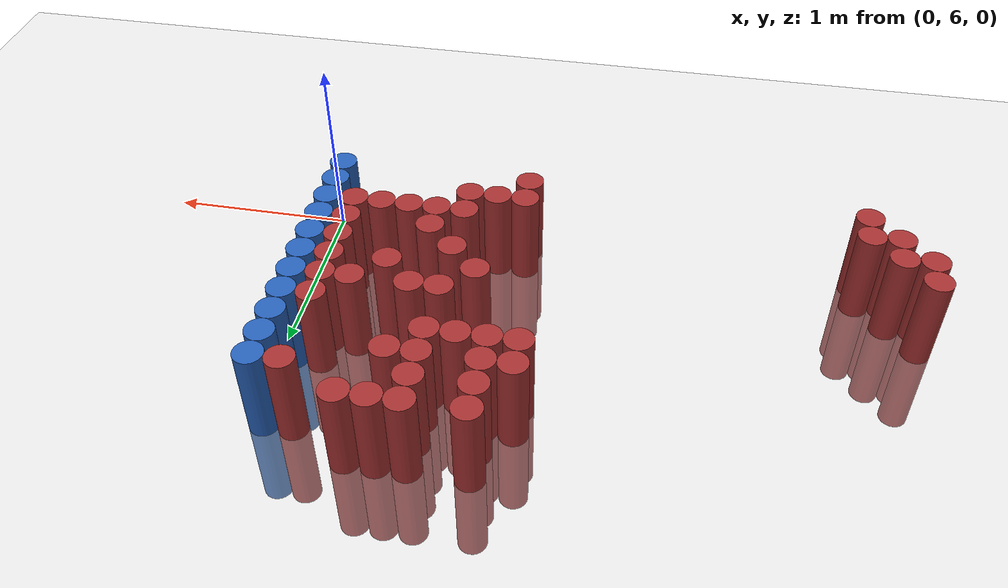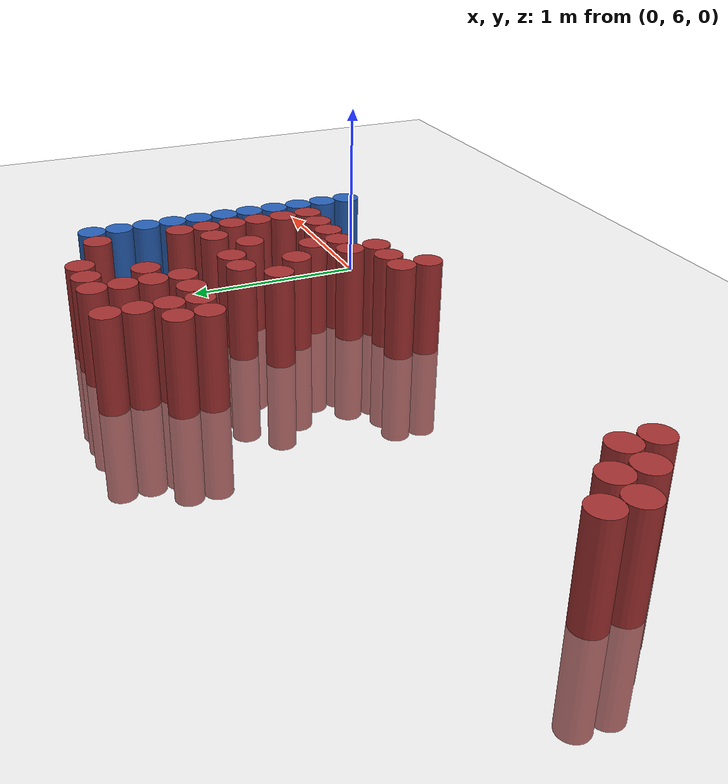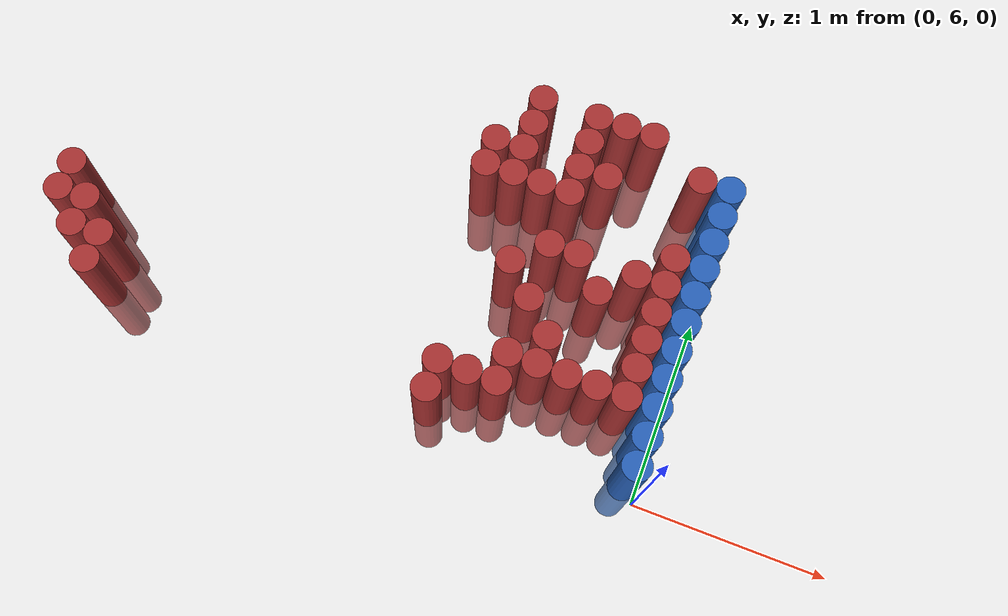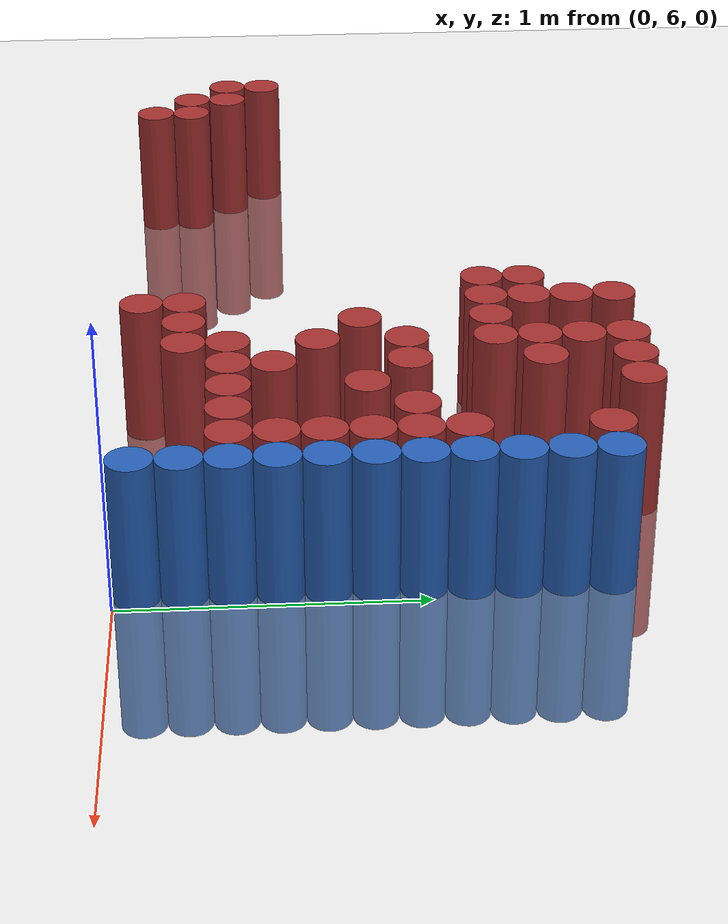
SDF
<sdf version="1.6">
 <world name="default">
  <model name="ground_plane">
   <static>1</static>
   <link name="link">
    <collision name="collision">
     <geometry><plane><normal>0 0 1</normal><size>100 100</size></plane></geometry>
     <surface><friction><ode><mu>100</mu><mu2>50</mu2></ode></friction></surface>
    </collision>
    <visual name="visual">
     <cast_shadows>0</cast_shadows>
     <geometry><plane><normal>0 0 1</normal><size>100 100</size></plane></geometry>
     <material>
      <script><uri>file://media/materials/scripts/gazebo.material</uri><name>Gazebo/Grey</name></script>
     </material>
    </visual>
   </link>
  </model>
  <model name="unit_cylinder_184">
   <static>1</static>
   <pose>-3.225000 6.375000 0.000000 0.000000 0.000000 0.000000</pose>
   <link name="link">
    <inertial>
     <mass>1</mass>
     <inertia><ixx>0.145833</ixx><ixy>0</ixy><ixz>0</ixz><iyy>0.145833</iyy><iyz>0</iyz><izz>0.125</izz></inertia>
    </inertial>
    <collision name="collision">
     <geometry><cylinder><radius>0.075000</radius><length>1</length></cylinder></geometry>
    </collision>
    <visual name="visual">
     <geometry><cylinder><radius>0.075000</radius><length>1</length></cylinder></geometry>
     <material>
      <ambient>0.648000 0.192000 0.192000 1</ambient>
      <diffuse>0.648000 0.192000 0.192000 1</diffuse>
     </material>
     <material>
      <script><name>Gazebo/Grey</name><uri>file://media/materials/scripts/gazebo.material</uri></script>
     </material>
    </visual>
   </link>
  </model>
  <model name="unit_cylinder_185">
   <static>1</static>
   <pose>-3.225000 6.525000 0.000000 0.000000 0.000000 0.000000</pose>
   <link name="link">
    <inertial>
     <mass>1</mass>
     <inertia><ixx>0.145833</ixx><ixy>0</ixy><ixz>0</ixz><iyy>0.145833</iyy><iyz>0</iyz><izz>0.125</izz></inertia>
    </inertial>
    <collision name="collision">
     <geometry><cylinder><radius>0.075000</radius><length>1</length></cylinder></geometry>
    </collision>
    <visual name="visual">
     <geometry><cylinder><radius>0.075000</radius><length>1</length></cylinder></geometry>
     <material>
      <ambient>0.648000 0.192000 0.192000 1</ambient>
      <diffuse>0.648000 0.192000 0.192000 1</diffuse>
     </material>
     <material>
      <script><name>Gazebo/Grey</name><uri>file://media/materials/scripts/gazebo.material</uri></script>
     </material>
    </visual>
   </link>
  </model>
  <model name="unit_cylinder_190">
   <static>1</static>
   <pose>-3.075000 6.225000 0.000000 0.000000 0.000000 0.000000</pose>
   <link name="link">
    <inertial>
     <mass>1</mass>
     <inertia><ixx>0.145833</ixx><ixy>0</ixy><ixz>0</ixz><iyy>0.145833</iyy><iyz>0</iyz><izz>0.125</izz></inertia>
    </inertial>
    <collision name="collision">
     <geometry><cylinder><radius>0.075000</radius><length>1</length></cylinder></geometry>
    </collision>
    <visual name="visual">
     <geometry><cylinder><radius>0.075000</radius><length>1</length></cylinder></geometry>
     <material>
      <ambient>0.648000 0.192000 0.192000 1</ambient>
      <diffuse>0.648000 0.192000 0.192000 1</diffuse>
     </material>
     <material>
      <script><name>Gazebo/Grey</name><uri>file://media/materials/scripts/gazebo.material</uri></script>
     </material>
    </visual>
   </link>
  </model>
  <model name="unit_cylinder_191">
   <static>1</static>
   <pose>-3.075000 6.375000 0.000000 0.000000 0.000000 0.000000</pose>
   <link name="link">
    <inertial>
     <mass>1</mass>
     <inertia><ixx>0.145833</ixx><ixy>0</ixy><ixz>0</ixz><iyy>0.145833</iyy><iyz>0</iyz><izz>0.125</izz></inertia>
    </inertial>
    <collision name="collision">
     <geometry><cylinder><radius>0.075000</radius><length>1</length></cylinder></geometry>
    </collision>
    <visual name="visual">
     <geometry><cylinder><radius>0.075000</radius><length>1</length></cylinder></geometry>
     <material>
      <ambient>0.648000 0.192000 0.192000 1</ambient>
      <diffuse>0.648000 0.192000 0.192000 1</diffuse>
     </material>
     <material>
      <script><name>Gazebo/Grey</name><uri>file://media/materials/scripts/gazebo.material</uri></script>
     </material>
    </visual>
   </link>
  </model>
  <model name="unit_cylinder_192">
   <static>1</static>
   <pose>-2.925000 6.075000 0.000000 0.000000 0.000000 0.000000</pose>
   <link name="link">
    <inertial>
     <mass>1</mass>
     <inertia><ixx>0.145833</ixx><ixy>0</ixy><ixz>0</ixz><iyy>0.145833</iyy><iyz>0</iyz><izz>0.125</izz></inertia>
    </inertial>
    <collision name="collision">
     <geometry><cylinder><radius>0.075000</radius><length>1</length></cylinder></geometry>
    </collision>
    <visual name="visual">
     <geometry><cylinder><radius>0.075000</radius><length>1</length></cylinder></geometry>
     <material>
      <ambient>0.648000 0.192000 0.192000 1</ambient>
      <diffuse>0.648000 0.192000 0.192000 1</diffuse>
     </material>
     <material>
      <script><name>Gazebo/Grey</name><uri>file://media/materials/scripts/gazebo.material</uri></script>
     </material>
    </visual>
   </link>
  </model>
  <model name="unit_cylinder_193">
   <static>1</static>
   <pose>-2.925000 6.225000 0.000000 0.000000 0.000000 0.000000</pose>
   <link name="link">
    <inertial>
     <mass>1</mass>
     <inertia><ixx>0.145833</ixx><ixy>0</ixy><ixz>0</ixz><iyy>0.145833</iyy><iyz>0</iyz><izz>0.125</izz></inertia>
    </inertial>
    <collision name="collision">
     <geometry><cylinder><radius>0.075000</radius><length>1</length></cylinder></geometry>
    </collision>
    <visual name="visual">
     <geometry><cylinder><radius>0.075000</radius><length>1</length></cylinder></geometry>
     <material>
      <ambient>0.648000 0.192000 0.192000 1</ambient>
      <diffuse>0.648000 0.192000 0.192000 1</diffuse>
     </material>
     <material>
      <script><name>Gazebo/Grey</name><uri>file://media/materials/scripts/gazebo.material</uri></script>
     </material>
    </visual>
   </link>
  </model>
  <model name="unit_cylinder_200">
   <static>1</static>
   <pose>-1.275000 7.275000 0.000000 0.000000 0.000000 0.000000</pose>
   <link name="link">
    <inertial>
     <mass>1</mass>
     <inertia><ixx>0.145833</ixx><ixy>0</ixy><ixz>0</ixz><iyy>0.145833</iyy><iyz>0</iyz><izz>0.125</izz></inertia>
    </inertial>
    <collision name="collision">
     <geometry><cylinder><radius>0.075000</radius><length>1</length></cylinder></geometry>
    </collision>
    <visual name="visual">
     <geometry><cylinder><radius>0.075000</radius><length>1</length></cylinder></geometry>
     <material>
      <ambient>0.648000 0.192000 0.192000 1</ambient>
      <diffuse>0.648000 0.192000 0.192000 1</diffuse>
     </material>
     <material>
      <script><name>Gazebo/Grey</name><uri>file://media/materials/scripts/gazebo.material</uri></script>
     </material>
    </visual>
   </link>
  </model>
  <model name="unit_cylinder_201">
   <static>1</static>
   <pose>-1.275000 7.425000 0.000000 0.000000 0.000000 0.000000</pose>
   <link name="link">
    <inertial>
     <mass>1</mass>
     <inertia><ixx>0.145833</ixx><ixy>0</ixy><ixz>0</ixz><iyy>0.145833</iyy><iyz>0</iyz><izz>0.125</izz></inertia>
    </inertial>
    <collision name="collision">
     <geometry><cylinder><radius>0.075000</radius><length>1</length></cylinder></geometry>
    </collision>
    <visual name="visual">
     <geometry><cylinder><radius>0.075000</radius><length>1</length></cylinder></geometry>
     <material>
      <ambient>0.648000 0.192000 0.192000 1</ambient>
      <diffuse>0.648000 0.192000 0.192000 1</diffuse>
     </material>
     <material>
      <script><name>Gazebo/Grey</name><uri>file://media/materials/scripts/gazebo.material</uri></script>
     </material>
    </visual>
   </link>
  </model>
  <model name="unit_cylinder_206">
   <static>1</static>
   <pose>-1.125000 6.075000 0.000000 0.000000 0.000000 0.000000</pose>
   <link name="link">
    <inertial>
     <mass>1</mass>
     <inertia><ixx>0.145833</ixx><ixy>0</ixy><ixz>0</ixz><iyy>0.145833</iyy><iyz>0</iyz><izz>0.125</izz></inertia>
    </inertial>
    <collision name="collision">
     <geometry><cylinder><radius>0.075000</radius><length>1</length></cylinder></geometry>
    </collision>
    <visual name="visual">
     <geometry><cylinder><radius>0.075000</radius><length>1</length></cylinder></geometry>
     <material>
      <ambient>0.648000 0.192000 0.192000 1</ambient>
      <diffuse>0.648000 0.192000 0.192000 1</diffuse>
     </material>
     <material>
      <script><name>Gazebo/Grey</name><uri>file://media/materials/scripts/gazebo.material</uri></script>
     </material>
    </visual>
   </link>
  </model>
  <model name="unit_cylinder_207">
   <static>1</static>
   <pose>-1.125000 6.225000 0.000000 0.000000 0.000000 0.000000</pose>
   <link name="link">
    <inertial>
     <mass>1</mass>
     <inertia><ixx>0.145833</ixx><ixy>0</ixy><ixz>0</ixz><iyy>0.145833</iyy><iyz>0</iyz><izz>0.125</izz></inertia>
    </inertial>
    <collision name="collision">
     <geometry><cylinder><radius>0.075000</radius><length>1</length></cylinder></geometry>
    </collision>
    <visual name="visual">
     <geometry><cylinder><radius>0.075000</radius><length>1</length></cylinder></geometry>
     <material>
      <ambient>0.648000 0.192000 0.192000 1</ambient>
      <diffuse>0.648000 0.192000 0.192000 1</diffuse>
     </material>
     <material>
      <script><name>Gazebo/Grey</name><uri>file://media/materials/scripts/gazebo.material</uri></script>
     </material>
    </visual>
   </link>
  </model>
  <model name="unit_cylinder_208">
   <static>1</static>
   <pose>-1.125000 7.275000 0.000000 0.000000 0.000000 0.000000</pose>
   <link name="link">
    <inertial>
     <mass>1</mass>
     <inertia><ixx>0.145833</ixx><ixy>0</ixy><ixz>0</ixz><iyy>0.145833</iyy><iyz>0</iyz><izz>0.125</izz></inertia>
    </inertial>
    <collision name="collision">
     <geometry><cylinder><radius>0.075000</radius><length>1</length></cylinder></geometry>
    </collision>
    <visual name="visual">
     <geometry><cylinder><radius>0.075000</radius><length>1</length></cylinder></geometry>
     <material>
      <ambient>0.648000 0.192000 0.192000 1</ambient>
      <diffuse>0.648000 0.192000 0.192000 1</diffuse>
     </material>
     <material>
      <script><name>Gazebo/Grey</name><uri>file://media/materials/scripts/gazebo.material</uri></script>
     </material>
    </visual>
   </link>
  </model>
  <model name="unit_cylinder_209">
   <static>1</static>
   <pose>-1.125000 7.425000 0.000000 0.000000 0.000000 0.000000</pose>
   <link name="link">
    <inertial>
     <mass>1</mass>
     <inertia><ixx>0.145833</ixx><ixy>0</ixy><ixz>0</ixz><iyy>0.145833</iyy><iyz>0</iyz><izz>0.125</izz></inertia>
    </inertial>
    <collision name="collision">
     <geometry><cylinder><radius>0.075000</radius><length>1</length></cylinder></geometry>
    </collision>
    <visual name="visual">
     <geometry><cylinder><radius>0.075000</radius><length>1</length></cylinder></geometry>
     <material>
      <ambient>0.648000 0.192000 0.192000 1</ambient>
      <diffuse>0.648000 0.192000 0.192000 1</diffuse>
     </material>
     <material>
      <script><name>Gazebo/Grey</name><uri>file://media/materials/scripts/gazebo.material</uri></script>
     </material>
    </visual>
   </link>
  </model>
  <model name="unit_cylinder_210">
   <static>1</static>
   <pose>-1.125000 7.575000 0.000000 0.000000 0.000000 0.000000</pose>
   <link name="link">
    <inertial>
     <mass>1</mass>
     <inertia><ixx>0.145833</ixx><ixy>0</ixy><ixz>0</ixz><iyy>0.145833</iyy><iyz>0</iyz><izz>0.125</izz></inertia>
    </inertial>
    <collision name="collision">
     <geometry><cylinder><radius>0.075000</radius><length>1</length></cylinder></geometry>
    </collision>
    <visual name="visual">
     <geometry><cylinder><radius>0.075000</radius><length>1</length></cylinder></geometry>
     <material>
      <ambient>0.648000 0.192000 0.192000 1</ambient>
      <diffuse>0.648000 0.192000 0.192000 1</diffuse>
     </material>
     <material>
      <script><name>Gazebo/Grey</name><uri>file://media/materials/scripts/gazebo.material</uri></script>
     </material>
    </visual>
   </link>
  </model>
  <model name="unit_cylinder_211">
   <static>1</static>
   <pose>-1.125000 7.725000 0.000000 0.000000 0.000000 0.000000</pose>
   <link name="link">
    <inertial>
     <mass>1</mass>
     <inertia><ixx>0.145833</ixx><ixy>0</ixy><ixz>0</ixz><iyy>0.145833</iyy><iyz>0</iyz><izz>0.125</izz></inertia>
    </inertial>
    <collision name="collision">
     <geometry><cylinder><radius>0.075000</radius><length>1</length></cylinder></geometry>
    </collision>
    <visual name="visual">
     <geometry><cylinder><radius>0.075000</radius><length>1</length></cylinder></geometry>
     <material>
      <ambient>0.648000 0.192000 0.192000 1</ambient>
      <diffuse>0.648000 0.192000 0.192000 1</diffuse>
     </material>
     <material>
      <script><name>Gazebo/Grey</name><uri>file://media/materials/scripts/gazebo.material</uri></script>
     </material>
    </visual>
   </link>
  </model>
  <model name="unit_cylinder_220">
   <static>1</static>
   <pose>-0.975000 6.225000 0.000000 0.000000 0.000000 0.000000</pose>
   <link name="link">
    <inertial>
     <mass>1</mass>
     <inertia><ixx>0.145833</ixx><ixy>0</ixy><ixz>0</ixz><iyy>0.145833</iyy><iyz>0</iyz><izz>0.125</izz></inertia>
    </inertial>
    <collision name="collision">
     <geometry><cylinder><radius>0.075000</radius><length>1</length></cylinder></geometry>
    </collision>
    <visual name="visual">
     <geometry><cylinder><radius>0.075000</radius><length>1</length></cylinder></geometry>
     <material>
      <ambient>0.648000 0.192000 0.192000 1</ambient>
      <diffuse>0.648000 0.192000 0.192000 1</diffuse>
     </material>
     <material>
      <script><name>Gazebo/Grey</name><uri>file://media/materials/scripts/gazebo.material</uri></script>
     </material>
    </visual>
   </link>
  </model>
  <model name="unit_cylinder_221">
   <static>1</static>
   <pose>-0.975000 6.825000 0.000000 0.000000 0.000000 0.000000</pose>
   <link name="link">
    <inertial>
     <mass>1</mass>
     <inertia><ixx>0.145833</ixx><ixy>0</ixy><ixz>0</ixz><iyy>0.145833</iyy><iyz>0</iyz><izz>0.125</izz></inertia>
    </inertial>
    <collision name="collision">
     <geometry><cylinder><radius>0.075000</radius><length>1</length></cylinder></geometry>
    </collision>
    <visual name="visual">
     <geometry><cylinder><radius>0.075000</radius><length>1</length></cylinder></geometry>
     <material>
      <ambient>0.648000 0.192000 0.192000 1</ambient>
      <diffuse>0.648000 0.192000 0.192000 1</diffuse>
     </material>
     <material>
      <script><name>Gazebo/Grey</name><uri>file://media/materials/scripts/gazebo.material</uri></script>
     </material>
    </visual>
   </link>
  </model>
  <model name="unit_cylinder_222">
   <static>1</static>
   <pose>-0.975000 7.275000 0.000000 0.000000 0.000000 0.000000</pose>
   <link name="link">
    <inertial>
     <mass>1</mass>
     <inertia><ixx>0.145833</ixx><ixy>0</ixy><ixz>0</ixz><iyy>0.145833</iyy><iyz>0</iyz><izz>0.125</izz></inertia>
    </inertial>
    <collision name="collision">
     <geometry><cylinder><radius>0.075000</radius><length>1</length></cylinder></geometry>
    </collision>
    <visual name="visual">
     <geometry><cylinder><radius>0.075000</radius><length>1</length></cylinder></geometry>
     <material>
      <ambient>0.648000 0.192000 0.192000 1</ambient>
      <diffuse>0.648000 0.192000 0.192000 1</diffuse>
     </material>
     <material>
      <script><name>Gazebo/Grey</name><uri>file://media/materials/scripts/gazebo.material</uri></script>
     </material>
    </visual>
   </link>
  </model>
  <model name="unit_cylinder_228">
   <static>1</static>
   <pose>-0.825000 6.225000 0.000000 0.000000 0.000000 0.000000</pose>
   <link name="link">
    <inertial>
     <mass>1</mass>
     <inertia><ixx>0.145833</ixx><ixy>0</ixy><ixz>0</ixz><iyy>0.145833</iyy><iyz>0</iyz><izz>0.125</izz></inertia>
    </inertial>
    <collision name="collision">
     <geometry><cylinder><radius>0.075000</radius><length>1</length></cylinder></geometry>
    </collision>
    <visual name="visual">
     <geometry><cylinder><radius>0.075000</radius><length>1</length></cylinder></geometry>
     <material>
      <ambient>0.648000 0.192000 0.192000 1</ambient>
      <diffuse>0.648000 0.192000 0.192000 1</diffuse>
     </material>
     <material>
      <script><name>Gazebo/Grey</name><uri>file://media/materials/scripts/gazebo.material</uri></script>
     </material>
    </visual>
   </link>
  </model>
  <model name="unit_cylinder_229">
   <static>1</static>
   <pose>-0.825000 6.375000 0.000000 0.000000 0.000000 0.000000</pose>
   <link name="link">
    <inertial>
     <mass>1</mass>
     <inertia><ixx>0.145833</ixx><ixy>0</ixy><ixz>0</ixz><iyy>0.145833</iyy><iyz>0</iyz><izz>0.125</izz></inertia>
    </inertial>
    <collision name="collision">
     <geometry><cylinder><radius>0.075000</radius><length>1</length></cylinder></geometry>
    </collision>
    <visual name="visual">
     <geometry><cylinder><radius>0.075000</radius><length>1</length></cylinder></geometry>
     <material>
      <ambient>0.648000 0.192000 0.192000 1</ambient>
      <diffuse>0.648000 0.192000 0.192000 1</diffuse>
     </material>
     <material>
      <script><name>Gazebo/Grey</name><uri>file://media/materials/scripts/gazebo.material</uri></script>
     </material>
    </visual>
   </link>
  </model>
  <model name="unit_cylinder_230">
   <static>1</static>
   <pose>-0.825000 6.675000 0.000000 0.000000 0.000000 0.000000</pose>
   <link name="link">
    <inertial>
     <mass>1</mass>
     <inertia><ixx>0.145833</ixx><ixy>0</ixy><ixz>0</ixz><iyy>0.145833</iyy><iyz>0</iyz><izz>0.125</izz></inertia>
    </inertial>
    <collision name="collision">
     <geometry><cylinder><radius>0.075000</radius><length>1</length></cylinder></geometry>
    </collision>
    <visual name="visual">
     <geometry><cylinder><radius>0.075000</radius><length>1</length></cylinder></geometry>
     <material>
      <ambient>0.648000 0.192000 0.192000 1</ambient>
      <diffuse>0.648000 0.192000 0.192000 1</diffuse>
     </material>
     <material>
      <script><name>Gazebo/Grey</name><uri>file://media/materials/scripts/gazebo.material</uri></script>
     </material>
    </visual>
   </link>
  </model>
  <model name="unit_cylinder_231">
   <static>1</static>
   <pose>-0.825000 6.975000 0.000000 0.000000 0.000000 0.000000</pose>
   <link name="link">
    <inertial>
     <mass>1</mass>
     <inertia><ixx>0.145833</ixx><ixy>0</ixy><ixz>0</ixz><iyy>0.145833</iyy><iyz>0</iyz><izz>0.125</izz></inertia>
    </inertial>
    <collision name="collision">
     <geometry><cylinder><radius>0.075000</radius><length>1</length></cylinder></geometry>
    </collision>
    <visual name="visual">
     <geometry><cylinder><radius>0.075000</radius><length>1</length></cylinder></geometry>
     <material>
      <ambient>0.648000 0.192000 0.192000 1</ambient>
      <diffuse>0.648000 0.192000 0.192000 1</diffuse>
     </material>
     <material>
      <script><name>Gazebo/Grey</name><uri>file://media/materials/scripts/gazebo.material</uri></script>
     </material>
    </visual>
   </link>
  </model>
  <model name="unit_cylinder_232">
   <static>1</static>
   <pose>-0.825000 7.275000 0.000000 0.000000 0.000000 0.000000</pose>
   <link name="link">
    <inertial>
     <mass>1</mass>
     <inertia><ixx>0.145833</ixx><ixy>0</ixy><ixz>0</ixz><iyy>0.145833</iyy><iyz>0</iyz><izz>0.125</izz></inertia>
    </inertial>
    <collision name="collision">
     <geometry><cylinder><radius>0.075000</radius><length>1</length></cylinder></geometry>
    </collision>
    <visual name="visual">
     <geometry><cylinder><radius>0.075000</radius><length>1</length></cylinder></geometry>
     <material>
      <ambient>0.648000 0.192000 0.192000 1</ambient>
      <diffuse>0.648000 0.192000 0.192000 1</diffuse>
     </material>
     <material>
      <script><name>Gazebo/Grey</name><uri>file://media/materials/scripts/gazebo.material</uri></script>
     </material>
    </visual>
   </link>
  </model>
  <model name="unit_cylinder_233">
   <static>1</static>
   <pose>-0.825000 7.425000 0.000000 0.000000 0.000000 0.000000</pose>
   <link name="link">
    <inertial>
     <mass>1</mass>
     <inertia><ixx>0.145833</ixx><ixy>0</ixy><ixz>0</ixz><iyy>0.145833</iyy><iyz>0</iyz><izz>0.125</izz></inertia>
    </inertial>
    <collision name="collision">
     <geometry><cylinder><radius>0.075000</radius><length>1</length></cylinder></geometry>
    </collision>
    <visual name="visual">
     <geometry><cylinder><radius>0.075000</radius><length>1</length></cylinder></geometry>
     <material>
      <ambient>0.648000 0.192000 0.192000 1</ambient>
      <diffuse>0.648000 0.192000 0.192000 1</diffuse>
     </material>
     <material>
      <script><name>Gazebo/Grey</name><uri>file://media/materials/scripts/gazebo.material</uri></script>
     </material>
    </visual>
   </link>
  </model>
  <model name="unit_cylinder_234">
   <static>1</static>
   <pose>-0.825000 7.575000 0.000000 0.000000 0.000000 0.000000</pose>
   <link name="link">
    <inertial>
     <mass>1</mass>
     <inertia><ixx>0.145833</ixx><ixy>0</ixy><ixz>0</ixz><iyy>0.145833</iyy><iyz>0</iyz><izz>0.125</izz></inertia>
    </inertial>
    <collision name="collision">
     <geometry><cylinder><radius>0.075000</radius><length>1</length></cylinder></geometry>
    </collision>
    <visual name="visual">
     <geometry><cylinder><radius>0.075000</radius><length>1</length></cylinder></geometry>
     <material>
      <ambient>0.648000 0.192000 0.192000 1</ambient>
      <diffuse>0.648000 0.192000 0.192000 1</diffuse>
     </material>
     <material>
      <script><name>Gazebo/Grey</name><uri>file://media/materials/scripts/gazebo.material</uri></script>
     </material>
    </visual>
   </link>
  </model>
  <model name="unit_cylinder_235">
   <static>1</static>
   <pose>-0.825000 7.725000 0.000000 0.000000 0.000000 0.000000</pose>
   <link name="link">
    <inertial>
     <mass>1</mass>
     <inertia><ixx>0.145833</ixx><ixy>0</ixy><ixz>0</ixz><iyy>0.145833</iyy><iyz>0</iyz><izz>0.125</izz></inertia>
    </inertial>
    <collision name="collision">
     <geometry><cylinder><radius>0.075000</radius><length>1</length></cylinder></geometry>
    </collision>
    <visual name="visual">
     <geometry><cylinder><radius>0.075000</radius><length>1</length></cylinder></geometry>
     <material>
      <ambient>0.648000 0.192000 0.192000 1</ambient>
      <diffuse>0.648000 0.192000 0.192000 1</diffuse>
     </material>
     <material>
      <script><name>Gazebo/Grey</name><uri>file://media/materials/scripts/gazebo.material</uri></script>
     </material>
    </visual>
   </link>
  </model>
  <model name="unit_cylinder_241">
   <static>1</static>
   <pose>-0.675000 6.375000 0.000000 0.000000 0.000000 0.000000</pose>
   <link name="link">
    <inertial>
     <mass>1</mass>
     <inertia><ixx>0.145833</ixx><ixy>0</ixy><ixz>0</ixz><iyy>0.145833</iyy><iyz>0</iyz><izz>0.125</izz></inertia>
    </inertial>
    <collision name="collision">
     <geometry><cylinder><radius>0.075000</radius><length>1</length></cylinder></geometry>
    </collision>
    <visual name="visual">
     <geometry><cylinder><radius>0.075000</radius><length>1</length></cylinder></geometry>
     <material>
      <ambient>0.648000 0.192000 0.192000 1</ambient>
      <diffuse>0.648000 0.192000 0.192000 1</diffuse>
     </material>
     <material>
      <script><name>Gazebo/Grey</name><uri>file://media/materials/scripts/gazebo.material</uri></script>
     </material>
    </visual>
   </link>
  </model>
  <model name="unit_cylinder_242">
   <static>1</static>
   <pose>-0.675000 6.525000 0.000000 0.000000 0.000000 0.000000</pose>
   <link name="link">
    <inertial>
     <mass>1</mass>
     <inertia><ixx>0.145833</ixx><ixy>0</ixy><ixz>0</ixz><iyy>0.145833</iyy><iyz>0</iyz><izz>0.125</izz></inertia>
    </inertial>
    <collision name="collision">
     <geometry><cylinder><radius>0.075000</radius><length>1</length></cylinder></geometry>
    </collision>
    <visual name="visual">
     <geometry><cylinder><radius>0.075000</radius><length>1</length></cylinder></geometry>
     <material>
      <ambient>0.648000 0.192000 0.192000 1</ambient>
      <diffuse>0.648000 0.192000 0.192000 1</diffuse>
     </material>
     <material>
      <script><name>Gazebo/Grey</name><uri>file://media/materials/scripts/gazebo.material</uri></script>
     </material>
    </visual>
   </link>
  </model>
  <model name="unit_cylinder_243">
   <static>1</static>
   <pose>-0.675000 6.975000 0.000000 0.000000 0.000000 0.000000</pose>
   <link name="link">
    <inertial>
     <mass>1</mass>
     <inertia><ixx>0.145833</ixx><ixy>0</ixy><ixz>0</ixz><iyy>0.145833</iyy><iyz>0</iyz><izz>0.125</izz></inertia>
    </inertial>
    <collision name="collision">
     <geometry><cylinder><radius>0.075000</radius><length>1</length></cylinder></geometry>
    </collision>
    <visual name="visual">
     <geometry><cylinder><radius>0.075000</radius><length>1</length></cylinder></geometry>
     <material>
      <ambient>0.648000 0.192000 0.192000 1</ambient>
      <diffuse>0.648000 0.192000 0.192000 1</diffuse>
     </material>
     <material>
      <script><name>Gazebo/Grey</name><uri>file://media/materials/scripts/gazebo.material</uri></script>
     </material>
    </visual>
   </link>
  </model>
  <model name="unit_cylinder_244">
   <static>1</static>
   <pose>-0.675000 7.425000 0.000000 0.000000 0.000000 0.000000</pose>
   <link name="link">
    <inertial>
     <mass>1</mass>
     <inertia><ixx>0.145833</ixx><ixy>0</ixy><ixz>0</ixz><iyy>0.145833</iyy><iyz>0</iyz><izz>0.125</izz></inertia>
    </inertial>
    <collision name="collision">
     <geometry><cylinder><radius>0.075000</radius><length>1</length></cylinder></geometry>
    </collision>
    <visual name="visual">
     <geometry><cylinder><radius>0.075000</radius><length>1</length></cylinder></geometry>
     <material>
      <ambient>0.648000 0.192000 0.192000 1</ambient>
      <diffuse>0.648000 0.192000 0.192000 1</diffuse>
     </material>
     <material>
      <script><name>Gazebo/Grey</name><uri>file://media/materials/scripts/gazebo.material</uri></script>
     </material>
    </visual>
   </link>
  </model>
  <model name="unit_cylinder_245">
   <static>1</static>
   <pose>-0.675000 7.725000 0.000000 0.000000 0.000000 0.000000</pose>
   <link name="link">
    <inertial>
     <mass>1</mass>
     <inertia><ixx>0.145833</ixx><ixy>0</ixy><ixz>0</ixz><iyy>0.145833</iyy><iyz>0</iyz><izz>0.125</izz></inertia>
    </inertial>
    <collision name="collision">
     <geometry><cylinder><radius>0.075000</radius><length>1</length></cylinder></geometry>
    </collision>
    <visual name="visual">
     <geometry><cylinder><radius>0.075000</radius><length>1</length></cylinder></geometry>
     <material>
      <ambient>0.648000 0.192000 0.192000 1</ambient>
      <diffuse>0.648000 0.192000 0.192000 1</diffuse>
     </material>
     <material>
      <script><name>Gazebo/Grey</name><uri>file://media/materials/scripts/gazebo.material</uri></script>
     </material>
    </visual>
   </link>
  </model>
  <model name="unit_cylinder_253">
   <static>1</static>
   <pose>-0.525000 6.375000 0.000000 0.000000 0.000000 0.000000</pose>
   <link name="link">
    <inertial>
     <mass>1</mass>
     <inertia><ixx>0.145833</ixx><ixy>0</ixy><ixz>0</ixz><iyy>0.145833</iyy><iyz>0</iyz><izz>0.125</izz></inertia>
    </inertial>
    <collision name="collision">
     <geometry><cylinder><radius>0.075000</radius><length>1</length></cylinder></geometry>
    </collision>
    <visual name="visual">
     <geometry><cylinder><radius>0.075000</radius><length>1</length></cylinder></geometry>
     <material>
      <ambient>0.648000 0.192000 0.192000 1</ambient>
      <diffuse>0.648000 0.192000 0.192000 1</diffuse>
     </material>
     <material>
      <script><name>Gazebo/Grey</name><uri>file://media/materials/scripts/gazebo.material</uri></script>
     </material>
    </visual>
   </link>
  </model>
  <model name="unit_cylinder_254">
   <static>1</static>
   <pose>-0.525000 6.825000 0.000000 0.000000 0.000000 0.000000</pose>
   <link name="link">
    <inertial>
     <mass>1</mass>
     <inertia><ixx>0.145833</ixx><ixy>0</ixy><ixz>0</ixz><iyy>0.145833</iyy><iyz>0</iyz><izz>0.125</izz></inertia>
    </inertial>
    <collision name="collision">
     <geometry><cylinder><radius>0.075000</radius><length>1</length></cylinder></geometry>
    </collision>
    <visual name="visual">
     <geometry><cylinder><radius>0.075000</radius><length>1</length></cylinder></geometry>
     <material>
      <ambient>0.648000 0.192000 0.192000 1</ambient>
      <diffuse>0.648000 0.192000 0.192000 1</diffuse>
     </material>
     <material>
      <script><name>Gazebo/Grey</name><uri>file://media/materials/scripts/gazebo.material</uri></script>
     </material>
    </visual>
   </link>
  </model>
  <model name="unit_cylinder_255">
   <static>1</static>
   <pose>-0.525000 7.725000 0.000000 0.000000 0.000000 0.000000</pose>
   <link name="link">
    <inertial>
     <mass>1</mass>
     <inertia><ixx>0.145833</ixx><ixy>0</ixy><ixz>0</ixz><iyy>0.145833</iyy><iyz>0</iyz><izz>0.125</izz></inertia>
    </inertial>
    <collision name="collision">
     <geometry><cylinder><radius>0.075000</radius><length>1</length></cylinder></geometry>
    </collision>
    <visual name="visual">
     <geometry><cylinder><radius>0.075000</radius><length>1</length></cylinder></geometry>
     <material>
      <ambient>0.648000 0.192000 0.192000 1</ambient>
      <diffuse>0.648000 0.192000 0.192000 1</diffuse>
     </material>
     <material>
      <script><name>Gazebo/Grey</name><uri>file://media/materials/scripts/gazebo.material</uri></script>
     </material>
    </visual>
   </link>
  </model>
  <model name="unit_cylinder_267">
   <static>1</static>
   <pose>-0.375000 6.375000 0.000000 0.000000 0.000000 0.000000</pose>
   <link name="link">
    <inertial>
     <mass>1</mass>
     <inertia><ixx>0.145833</ixx><ixy>0</ixy><ixz>0</ixz><iyy>0.145833</iyy><iyz>0</iyz><izz>0.125</izz></inertia>
    </inertial>
    <collision name="collision">
     <geometry><cylinder><radius>0.075000</radius><length>1</length></cylinder></geometry>
    </collision>
    <visual name="visual">
     <geometry><cylinder><radius>0.075000</radius><length>1</length></cylinder></geometry>
     <material>
      <ambient>0.648000 0.192000 0.192000 1</ambient>
      <diffuse>0.648000 0.192000 0.192000 1</diffuse>
     </material>
     <material>
      <script><name>Gazebo/Grey</name><uri>file://media/materials/scripts/gazebo.material</uri></script>
     </material>
    </visual>
   </link>
  </model>
  <model name="unit_cylinder_268">
   <static>1</static>
   <pose>-0.375000 6.975000 0.000000 0.000000 0.000000 0.000000</pose>
   <link name="link">
    <inertial>
     <mass>1</mass>
     <inertia><ixx>0.145833</ixx><ixy>0</ixy><ixz>0</ixz><iyy>0.145833</iyy><iyz>0</iyz><izz>0.125</izz></inertia>
    </inertial>
    <collision name="collision">
     <geometry><cylinder><radius>0.075000</radius><length>1</length></cylinder></geometry>
    </collision>
    <visual name="visual">
     <geometry><cylinder><radius>0.075000</radius><length>1</length></cylinder></geometry>
     <material>
      <ambient>0.648000 0.192000 0.192000 1</ambient>
      <diffuse>0.648000 0.192000 0.192000 1</diffuse>
     </material>
     <material>
      <script><name>Gazebo/Grey</name><uri>file://media/materials/scripts/gazebo.material</uri></script>
     </material>
    </visual>
   </link>
  </model>
  <model name="unit_cylinder_280">
   <static>1</static>
   <pose>-0.225000 6.375000 0.000000 0.000000 0.000000 0.000000</pose>
   <link name="link">
    <inertial>
     <mass>1</mass>
     <inertia><ixx>0.145833</ixx><ixy>0</ixy><ixz>0</ixz><iyy>0.145833</iyy><iyz>0</iyz><izz>0.125</izz></inertia>
    </inertial>
    <collision name="collision">
     <geometry><cylinder><radius>0.075000</radius><length>1</length></cylinder></geometry>
    </collision>
    <visual name="visual">
     <geometry><cylinder><radius>0.075000</radius><length>1</length></cylinder></geometry>
     <material>
      <ambient>0.648000 0.192000 0.192000 1</ambient>
      <diffuse>0.648000 0.192000 0.192000 1</diffuse>
     </material>
     <material>
      <script><name>Gazebo/Grey</name><uri>file://media/materials/scripts/gazebo.material</uri></script>
     </material>
    </visual>
   </link>
  </model>
  <model name="unit_cylinder_281">
   <static>1</static>
   <pose>-0.225000 6.525000 0.000000 0.000000 0.000000 0.000000</pose>
   <link name="link">
    <inertial>
     <mass>1</mass>
     <inertia><ixx>0.145833</ixx><ixy>0</ixy><ixz>0</ixz><iyy>0.145833</iyy><iyz>0</iyz><izz>0.125</izz></inertia>
    </inertial>
    <collision name="collision">
     <geometry><cylinder><radius>0.075000</radius><length>1</length></cylinder></geometry>
    </collision>
    <visual name="visual">
     <geometry><cylinder><radius>0.075000</radius><length>1</length></cylinder></geometry>
     <material>
      <ambient>0.648000 0.192000 0.192000 1</ambient>
      <diffuse>0.648000 0.192000 0.192000 1</diffuse>
     </material>
     <material>
      <script><name>Gazebo/Grey</name><uri>file://media/materials/scripts/gazebo.material</uri></script>
     </material>
    </visual>
   </link>
  </model>
  <model name="unit_cylinder_282">
   <static>1</static>
   <pose>-0.225000 6.675000 0.000000 0.000000 0.000000 0.000000</pose>
   <link name="link">
    <inertial>
     <mass>1</mass>
     <inertia><ixx>0.145833</ixx><ixy>0</ixy><ixz>0</ixz><iyy>0.145833</iyy><iyz>0</iyz><izz>0.125</izz></inertia>
    </inertial>
    <collision name="collision">
     <geometry><cylinder><radius>0.075000</radius><length>1</length></cylinder></geometry>
    </collision>
    <visual name="visual">
     <geometry><cylinder><radius>0.075000</radius><length>1</length></cylinder></geometry>
     <material>
      <ambient>0.648000 0.192000 0.192000 1</ambient>
      <diffuse>0.648000 0.192000 0.192000 1</diffuse>
     </material>
     <material>
      <script><name>Gazebo/Grey</name><uri>file://media/materials/scripts/gazebo.material</uri></script>
     </material>
    </visual>
   </link>
  </model>
  <model name="unit_cylinder_283">
   <static>1</static>
   <pose>-0.225000 6.825000 0.000000 0.000000 0.000000 0.000000</pose>
   <link name="link">
    <inertial>
     <mass>1</mass>
     <inertia><ixx>0.145833</ixx><ixy>0</ixy><ixz>0</ixz><iyy>0.145833</iyy><iyz>0</iyz><izz>0.125</izz></inertia>
    </inertial>
    <collision name="collision">
     <geometry><cylinder><radius>0.075000</radius><length>1</length></cylinder></geometry>
    </collision>
    <visual name="visual">
     <geometry><cylinder><radius>0.075000</radius><length>1</length></cylinder></geometry>
     <material>
      <ambient>0.648000 0.192000 0.192000 1</ambient>
      <diffuse>0.648000 0.192000 0.192000 1</diffuse>
     </material>
     <material>
      <script><name>Gazebo/Grey</name><uri>file://media/materials/scripts/gazebo.material</uri></script>
     </material>
    </visual>
   </link>
  </model>
  <model name="unit_cylinder_284">
   <static>1</static>
   <pose>-0.225000 6.975000 0.000000 0.000000 0.000000 0.000000</pose>
   <link name="link">
    <inertial>
     <mass>1</mass>
     <inertia><ixx>0.145833</ixx><ixy>0</ixy><ixz>0</ixz><iyy>0.145833</iyy><iyz>0</iyz><izz>0.125</izz></inertia>
    </inertial>
    <collision name="collision">
     <geometry><cylinder><radius>0.075000</radius><length>1</length></cylinder></geometry>
    </collision>
    <visual name="visual">
     <geometry><cylinder><radius>0.075000</radius><length>1</length></cylinder></geometry>
     <material>
      <ambient>0.648000 0.192000 0.192000 1</ambient>
      <diffuse>0.648000 0.192000 0.192000 1</diffuse>
     </material>
     <material>
      <script><name>Gazebo/Grey</name><uri>file://media/materials/scripts/gazebo.material</uri></script>
     </material>
    </visual>
   </link>
  </model>
  <model name="unit_cylinder_285">
   <static>1</static>
   <pose>-0.225000 7.125000 0.000000 0.000000 0.000000 0.000000</pose>
   <link name="link">
    <inertial>
     <mass>1</mass>
     <inertia><ixx>0.145833</ixx><ixy>0</ixy><ixz>0</ixz><iyy>0.145833</iyy><iyz>0</iyz><izz>0.125</izz></inertia>
    </inertial>
    <collision name="collision">
     <geometry><cylinder><radius>0.075000</radius><length>1</length></cylinder></geometry>
    </collision>
    <visual name="visual">
     <geometry><cylinder><radius>0.075000</radius><length>1</length></cylinder></geometry>
     <material>
      <ambient>0.648000 0.192000 0.192000 1</ambient>
      <diffuse>0.648000 0.192000 0.192000 1</diffuse>
     </material>
     <material>
      <script><name>Gazebo/Grey</name><uri>file://media/materials/scripts/gazebo.material</uri></script>
     </material>
    </visual>
   </link>
  </model>
  <model name="unit_cylinder_286">
   <static>1</static>
   <pose>-0.225000 7.575000 0.000000 0.000000 0.000000 0.000000</pose>
   <link name="link">
    <inertial>
     <mass>1</mass>
     <inertia><ixx>0.145833</ixx><ixy>0</ixy><ixz>0</ixz><iyy>0.145833</iyy><iyz>0</iyz><izz>0.125</izz></inertia>
    </inertial>
    <collision name="collision">
     <geometry><cylinder><radius>0.075000</radius><length>1</length></cylinder></geometry>
    </collision>
    <visual name="visual">
     <geometry><cylinder><radius>0.075000</radius><length>1</length></cylinder></geometry>
     <material>
      <ambient>0.648000 0.192000 0.192000 1</ambient>
      <diffuse>0.648000 0.192000 0.192000 1</diffuse>
     </material>
     <material>
      <script><name>Gazebo/Grey</name><uri>file://media/materials/scripts/gazebo.material</uri></script>
     </material>
    </visual>
   </link>
  </model>
  <model name="unit_cylinder_297">
   <static>1</static>
   <pose>-0.075000 6.075000 0.000000 0.000000 0.000000 0.000000</pose>
   <link name="link">
    <inertial>
     <mass>1</mass>
     <inertia><ixx>0.145833</ixx><ixy>0</ixy><ixz>0</ixz><iyy>0.145833</iyy><iyz>0</iyz><izz>0.125</izz></inertia>
    </inertial>
    <collision name="collision">
     <geometry><cylinder><radius>0.075000</radius><length>1</length></cylinder></geometry>
    </collision>
    <visual name="visual">
     <geometry><cylinder><radius>0.075000</radius><length>1</length></cylinder></geometry>
     <material>
      <ambient>0.152000 0.379000 0.720000 1</ambient>
      <diffuse>0.152000 0.379000 0.720000 1</diffuse>
     </material>
     <material>
      <script><name>Gazebo/Grey</name><uri>file://media/materials/scripts/gazebo.material</uri></script>
     </material>
    </visual>
   </link>
  </model>
  <model name="unit_cylinder_298">
   <static>1</static>
   <pose>-0.075000 6.225000 0.000000 0.000000 0.000000 0.000000</pose>
   <link name="link">
    <inertial>
     <mass>1</mass>
     <inertia><ixx>0.145833</ixx><ixy>0</ixy><ixz>0</ixz><iyy>0.145833</iyy><iyz>0</iyz><izz>0.125</izz></inertia>
    </inertial>
    <collision name="collision">
     <geometry><cylinder><radius>0.075000</radius><length>1</length></cylinder></geometry>
    </collision>
    <visual name="visual">
     <geometry><cylinder><radius>0.075000</radius><length>1</length></cylinder></geometry>
     <material>
      <ambient>0.152000 0.379000 0.720000 1</ambient>
      <diffuse>0.152000 0.379000 0.720000 1</diffuse>
     </material>
     <material>
      <script><name>Gazebo/Grey</name><uri>file://media/materials/scripts/gazebo.material</uri></script>
     </material>
    </visual>
   </link>
  </model>
  <model name="unit_cylinder_299">
   <static>1</static>
   <pose>-0.075000 6.375000 0.000000 0.000000 0.000000 0.000000</pose>
   <link name="link">
    <inertial>
     <mass>1</mass>
     <inertia><ixx>0.145833</ixx><ixy>0</ixy><ixz>0</ixz><iyy>0.145833</iyy><iyz>0</iyz><izz>0.125</izz></inertia>
    </inertial>
    <collision name="collision">
     <geometry><cylinder><radius>0.075000</radius><length>1</length></cylinder></geometry>
    </collision>
    <visual name="visual">
     <geometry><cylinder><radius>0.075000</radius><length>1</length></cylinder></geometry>
     <material>
      <ambient>0.152000 0.379000 0.720000 1</ambient>
      <diffuse>0.152000 0.379000 0.720000 1</diffuse>
     </material>
     <material>
      <script><name>Gazebo/Grey</name><uri>file://media/materials/scripts/gazebo.material</uri></script>
     </material>
    </visual>
   </link>
  </model>
  <model name="unit_cylinder_300">
   <static>1</static>
   <pose>-0.075000 6.525000 0.000000 0.000000 0.000000 0.000000</pose>
   <link name="link">
    <inertial>
     <mass>1</mass>
     <inertia><ixx>0.145833</ixx><ixy>0</ixy><ixz>0</ixz><iyy>0.145833</iyy><iyz>0</iyz><izz>0.125</izz></inertia>
    </inertial>
    <collision name="collision">
     <geometry><cylinder><radius>0.075000</radius><length>1</length></cylinder></geometry>
    </collision>
    <visual name="visual">
     <geometry><cylinder><radius>0.075000</radius><length>1</length></cylinder></geometry>
     <material>
      <ambient>0.152000 0.379000 0.720000 1</ambient>
      <diffuse>0.152000 0.379000 0.720000 1</diffuse>
     </material>
     <material>
      <script><name>Gazebo/Grey</name><uri>file://media/materials/scripts/gazebo.material</uri></script>
     </material>
    </visual>
   </link>
  </model>
  <model name="unit_cylinder_301">
   <static>1</static>
   <pose>-0.075000 6.675000 0.000000 0.000000 0.000000 0.000000</pose>
   <link name="link">
    <inertial>
     <mass>1</mass>
     <inertia><ixx>0.145833</ixx><ixy>0</ixy><ixz>0</ixz><iyy>0.145833</iyy><iyz>0</iyz><izz>0.125</izz></inertia>
    </inertial>
    <collision name="collision">
     <geometry><cylinder><radius>0.075000</radius><length>1</length></cylinder></geometry>
    </collision>
    <visual name="visual">
     <geometry><cylinder><radius>0.075000</radius><length>1</length></cylinder></geometry>
     <material>
      <ambient>0.152000 0.379000 0.720000 1</ambient>
      <diffuse>0.152000 0.379000 0.720000 1</diffuse>
     </material>
     <material>
      <script><name>Gazebo/Grey</name><uri>file://media/materials/scripts/gazebo.material</uri></script>
     </material>
    </visual>
   </link>
  </model>
  <model name="unit_cylinder_302">
   <static>1</static>
   <pose>-0.075000 6.825000 0.000000 0.000000 0.000000 0.000000</pose>
   <link name="link">
    <inertial>
     <mass>1</mass>
     <inertia><ixx>0.145833</ixx><ixy>0</ixy><ixz>0</ixz><iyy>0.145833</iyy><iyz>0</iyz><izz>0.125</izz></inertia>
    </inertial>
    <collision name="collision">
     <geometry><cylinder><radius>0.075000</radius><length>1</length></cylinder></geometry>
    </collision>
    <visual name="visual">
     <geometry><cylinder><radius>0.075000</radius><length>1</length></cylinder></geometry>
     <material>
      <ambient>0.152000 0.379000 0.720000 1</ambient>
      <diffuse>0.152000 0.379000 0.720000 1</diffuse>
     </material>
     <material>
      <script><name>Gazebo/Grey</name><uri>file://media/materials/scripts/gazebo.material</uri></script>
     </material>
    </visual>
   </link>
  </model>
  <model name="unit_cylinder_303">
   <static>1</static>
   <pose>-0.075000 6.975000 0.000000 0.000000 0.000000 0.000000</pose>
   <link name="link">
    <inertial>
     <mass>1</mass>
     <inertia><ixx>0.145833</ixx><ixy>0</ixy><ixz>0</ixz><iyy>0.145833</iyy><iyz>0</iyz><izz>0.125</izz></inertia>
    </inertial>
    <collision name="collision">
     <geometry><cylinder><radius>0.075000</radius><length>1</length></cylinder></geometry>
    </collision>
    <visual name="visual">
     <geometry><cylinder><radius>0.075000</radius><length>1</length></cylinder></geometry>
     <material>
      <ambient>0.152000 0.379000 0.720000 1</ambient>
      <diffuse>0.152000 0.379000 0.720000 1</diffuse>
     </material>
     <material>
      <script><name>Gazebo/Grey</name><uri>file://media/materials/scripts/gazebo.material</uri></script>
     </material>
    </visual>
   </link>
  </model>
  <model name="unit_cylinder_304">
   <static>1</static>
   <pose>-0.075000 7.125000 0.000000 0.000000 0.000000 0.000000</pose>
   <link name="link">
    <inertial>
     <mass>1</mass>
     <inertia><ixx>0.145833</ixx><ixy>0</ixy><ixz>0</ixz><iyy>0.145833</iyy><iyz>0</iyz><izz>0.125</izz></inertia>
    </inertial>
    <collision name="collision">
     <geometry><cylinder><radius>0.075000</radius><length>1</length></cylinder></geometry>
    </collision>
    <visual name="visual">
     <geometry><cylinder><radius>0.075000</radius><length>1</length></cylinder></geometry>
     <material>
      <ambient>0.152000 0.379000 0.720000 1</ambient>
      <diffuse>0.152000 0.379000 0.720000 1</diffuse>
     </material>
     <material>
      <script><name>Gazebo/Grey</name><uri>file://media/materials/scripts/gazebo.material</uri></script>
     </material>
    </visual>
   </link>
  </model>
  <model name="unit_cylinder_305">
   <static>1</static>
   <pose>-0.075000 7.275000 0.000000 0.000000 0.000000 0.000000</pose>
   <link name="link">
    <inertial>
     <mass>1</mass>
     <inertia><ixx>0.145833</ixx><ixy>0</ixy><ixz>0</ixz><iyy>0.145833</iyy><iyz>0</iyz><izz>0.125</izz></inertia>
    </inertial>
    <collision name="collision">
     <geometry><cylinder><radius>0.075000</radius><length>1</length></cylinder></geometry>
    </collision>
    <visual name="visual">
     <geometry><cylinder><radius>0.075000</radius><length>1</length></cylinder></geometry>
     <material>
      <ambient>0.152000 0.379000 0.720000 1</ambient>
      <diffuse>0.152000 0.379000 0.720000 1</diffuse>
     </material>
     <material>
      <script><name>Gazebo/Grey</name><uri>file://media/materials/scripts/gazebo.material</uri></script>
     </material>
    </visual>
   </link>
  </model>
  <model name="unit_cylinder_306">
   <static>1</static>
   <pose>-0.075000 7.425000 0.000000 0.000000 0.000000 0.000000</pose>
   <link name="link">
    <inertial>
     <mass>1</mass>
     <inertia><ixx>0.145833</ixx><ixy>0</ixy><ixz>0</ixz><iyy>0.145833</iyy><iyz>0</iyz><izz>0.125</izz></inertia>
    </inertial>
    <collision name="collision">
     <geometry><cylinder><radius>0.075000</radius><length>1</length></cylinder></geometry>
    </collision>
    <visual name="visual">
     <geometry><cylinder><radius>0.075000</radius><length>1</length></cylinder></geometry>
     <material>
      <ambient>0.152000 0.379000 0.720000 1</ambient>
      <diffuse>0.152000 0.379000 0.720000 1</diffuse>
     </material>
     <material>
      <script><name>Gazebo/Grey</name><uri>file://media/materials/scripts/gazebo.material</uri></script>
     </material>
    </visual>
   </link>
  </model>
  <model name="unit_cylinder_307">
   <static>1</static>
   <pose>-0.075000 7.575000 0.000000 0.000000 0.000000 0.000000</pose>
   <link name="link">
    <inertial>
     <mass>1</mass>
     <inertia><ixx>0.145833</ixx><ixy>0</ixy><ixz>0</ixz><iyy>0.145833</iyy><iyz>0</iyz><izz>0.125</izz></inertia>
    </inertial>
    <collision name="collision">
     <geometry><cylinder><radius>0.075000</radius><length>1</length></cylinder></geometry>
    </collision>
    <visual name="visual">
     <geometry><cylinder><radius>0.075000</radius><length>1</length></cylinder></geometry>
     <material>
      <ambient>0.152000 0.379000 0.720000 1</ambient>
      <diffuse>0.152000 0.379000 0.720000 1</diffuse>
     </material>
     <material>
      <script><name>Gazebo/Grey</name><uri>file://media/materials/scripts/gazebo.material</uri></script>
     </material>
    </visual>
   </link>
  </model>
 </world>
</sdf>
